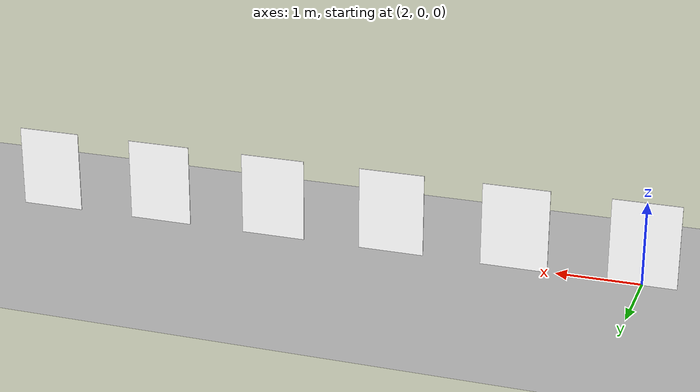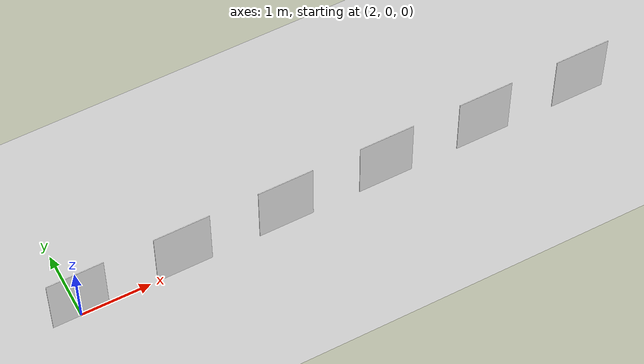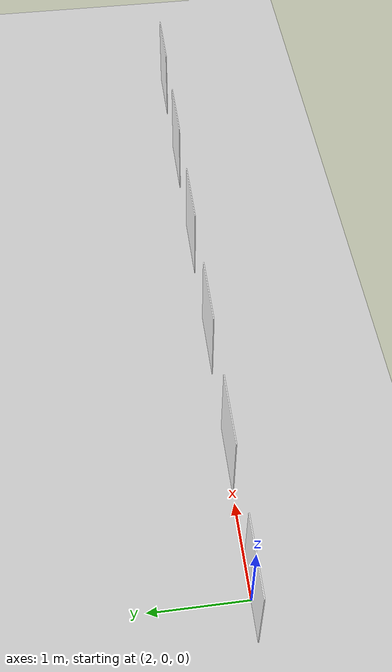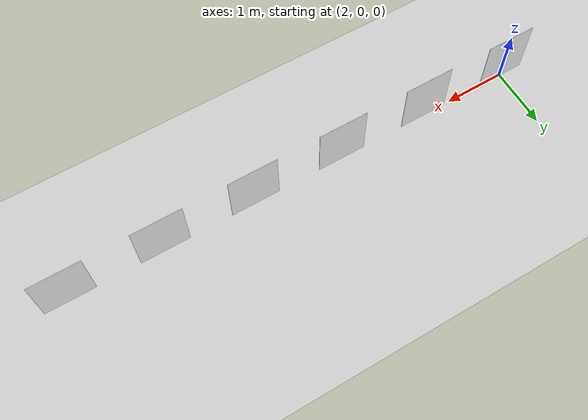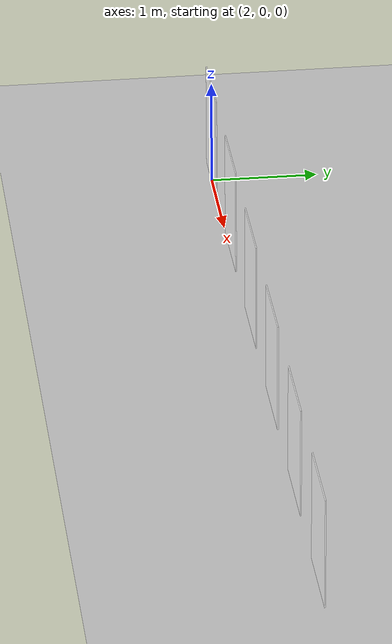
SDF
<?xml version="1.0"?>
<sdf version="1.6">
  <world name="billboard_test">
    <include><uri>model://sun</uri></include>
    <include><uri>model://ground_plane</uri></include>
    <scene><shadows>false</shadows></scene>
    <physics type="ode">
      <real_time_update_rate>1000.0</real_time_update_rate>
      <max_step_size>0.001</max_step_size>
      <real_time_factor>1</real_time_factor>
      <ode>
        <solver><type>quick</type><iters>150</iters><sor>1.4</sor>
        <use_dynamic_moi_rescaling>1</use_dynamic_moi_rescaling></solver>
        <constraints><cfm>0.00001</cfm><erp>0.2</erp>
        <contact_max_correcting_vel>2000.0</contact_max_correcting_vel>
        <contact_surface_layer>0.01</contact_surface_layer></constraints>
      </ode>
    </physics>
    <include>
      <uri>model://billboard_person1</uri>
      <pose>2.0 0 0 0 0 0</pose>
    </include>
    <include>
      <uri>model://billboard_chair1</uri>
      <pose>3.5 0 0 0 0 0</pose>
    </include>
    <include>
      <uri>model://billboard_bottle1</uri>
      <pose>5.0 0 0 0 0 0</pose>
    </include>
    <include>
      <uri>model://billboard_tv1</uri>
      <pose>6.5 0 0 0 0 0</pose>
    </include>
    <include>
      <uri>model://billboard_car1</uri>
      <pose>8.0 0 0 0 0 0</pose>
    </include>
    <include>
      <uri>model://billboard_bowl1</uri>
      <pose>9.5 0 0 0 0 0</pose>
    </include>

  </world>
</sdf>

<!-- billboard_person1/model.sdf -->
<sdf version="1.6">
  <model name="billboard_person1">
    <static>true</static>
    <link name="link">
      <visual name="vis">
        <pose>0 0 0.5 0 0 0</pose>
        <geometry><box><size>0.8 0.01 1.0</size></box></geometry>
        <material>
          <ambient>1 1 1 1</ambient>
          <diffuse>1 1 1 1</diffuse>
          <specular>0 0 0 1</specular>
          <emissive>0 0 0 1</emissive>
        </material>
      </visual>
      <collision name="coll">
        <geometry><box><size>0.8 0.01 1.0</size></box></geometry>
      </collision>
    </link>
  </model>
</sdf>

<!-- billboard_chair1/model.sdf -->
<sdf version="1.6">
  <model name="billboard_chair1">
    <static>true</static>
    <link name="link">
      <visual name="vis">
        <pose>0 0 0.5 0 0 0</pose>
        <geometry><box><size>0.8 0.01 1.0</size></box></geometry>
        <material>
          <ambient>1 1 1 1</ambient>
          <diffuse>1 1 1 1</diffuse>
          <specular>0 0 0 1</specular>
          <emissive>0 0 0 1</emissive>
        </material>
      </visual>
      <collision name="coll">
        <geometry><box><size>0.8 0.01 1.0</size></box></geometry>
      </collision>
    </link>
  </model>
</sdf>

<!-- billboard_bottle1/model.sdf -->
<sdf version="1.6">
  <model name="billboard_bottle1">
    <static>true</static>
    <link name="link">
      <visual name="vis">
        <pose>0 0 0.5 0 0 0</pose>
        <geometry><box><size>0.8 0.01 1.0</size></box></geometry>
        <material>
          <ambient>1 1 1 1</ambient>
          <diffuse>1 1 1 1</diffuse>
          <specular>0 0 0 1</specular>
          <emissive>0 0 0 1</emissive>
        </material>
      </visual>
      <collision name="coll">
        <geometry><box><size>0.8 0.01 1.0</size></box></geometry>
      </collision>
    </link>
  </model>
</sdf>

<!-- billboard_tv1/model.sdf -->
<sdf version="1.6">
  <model name="billboard_tv1">
    <static>true</static>
    <link name="link">
      <visual name="vis">
        <pose>0 0 0.5 0 0 0</pose>
        <geometry><box><size>0.8 0.01 1.0</size></box></geometry>
        <material>
          <ambient>1 1 1 1</ambient>
          <diffuse>1 1 1 1</diffuse>
          <specular>0 0 0 1</specular>
          <emissive>0 0 0 1</emissive>
        </material>
      </visual>
      <collision name="coll">
        <geometry><box><size>0.8 0.01 1.0</size></box></geometry>
      </collision>
    </link>
  </model>
</sdf>

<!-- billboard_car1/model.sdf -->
<sdf version="1.6">
  <model name="billboard_car1">
    <static>true</static>
    <link name="link">
      <visual name="vis">
        <pose>0 0 0.5 0 0 0</pose>
        <geometry><box><size>0.8 0.01 1.0</size></box></geometry>
        <material>
          <ambient>1 1 1 1</ambient>
          <diffuse>1 1 1 1</diffuse>
          <specular>0 0 0 1</specular>
          <emissive>0 0 0 1</emissive>
        </material>
      </visual>
      <collision name="coll">
        <geometry><box><size>0.8 0.01 1.0</size></box></geometry>
      </collision>
    </link>
  </model>
</sdf>

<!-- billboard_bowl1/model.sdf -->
<sdf version="1.6">
  <model name="billboard_bowl1">
    <static>true</static>
    <link name="link">
      <visual name="vis">
        <pose>0 0 0.5 0 0 0</pose>
        <geometry><box><size>0.8 0.01 1.0</size></box></geometry>
        <material>
          <ambient>1 1 1 1</ambient>
          <diffuse>1 1 1 1</diffuse>
          <specular>0 0 0 1</specular>
          <emissive>0 0 0 1</emissive>
        </material>
      </visual>
      <collision name="coll">
        <geometry><box><size>0.8 0.01 1.0</size></box></geometry>
      </collision>
    </link>
  </model>
</sdf>
